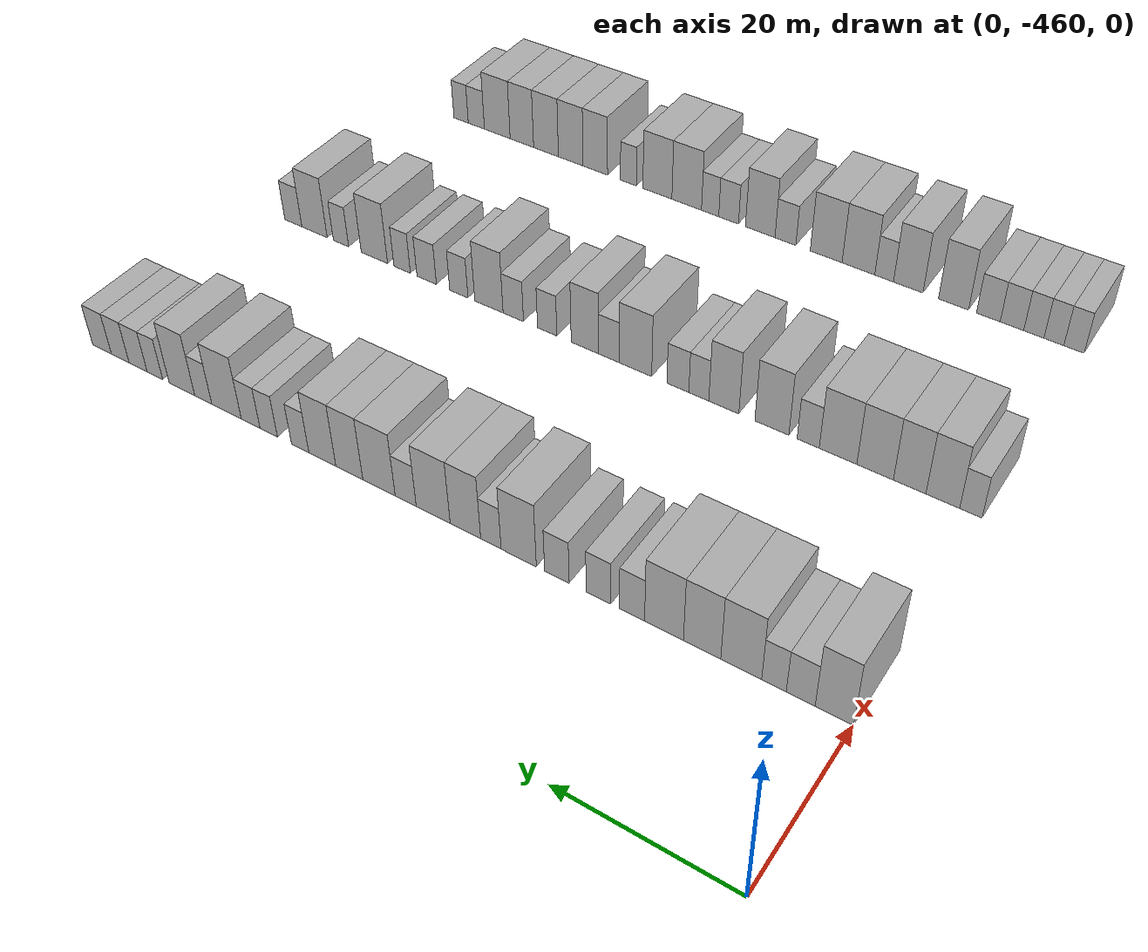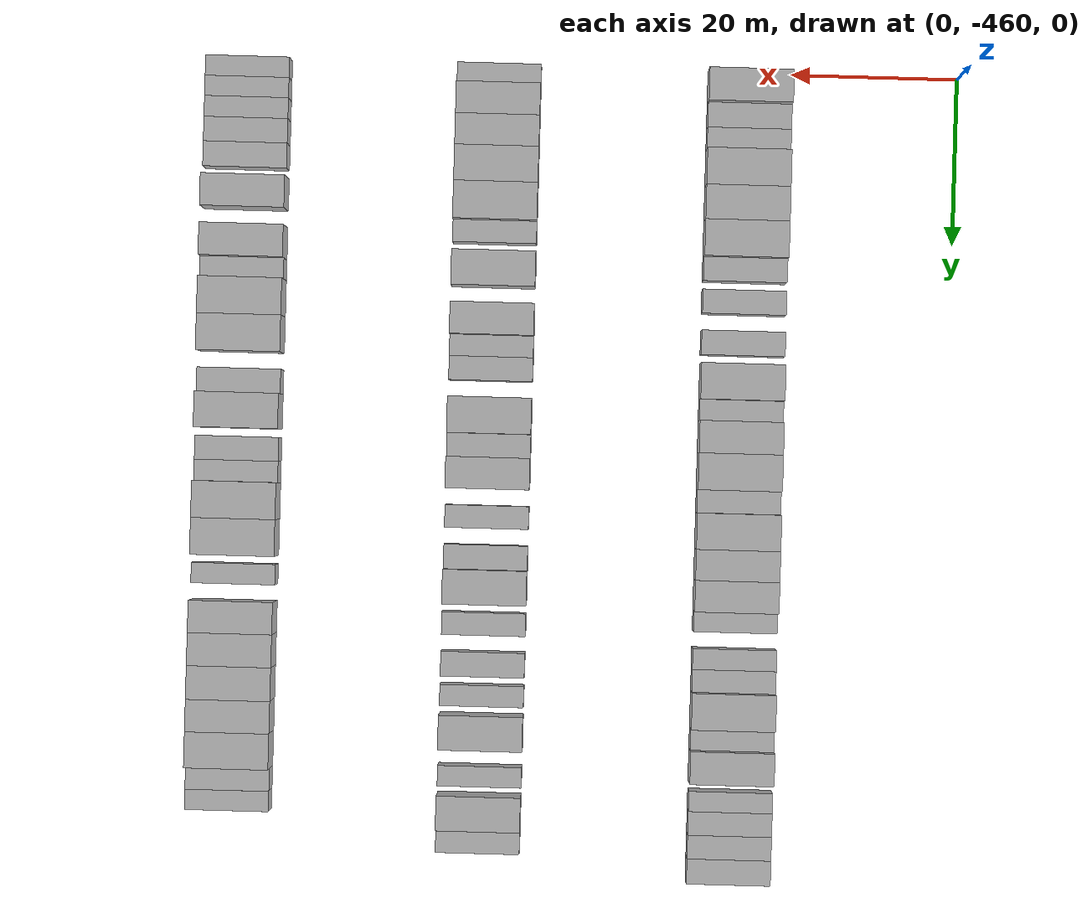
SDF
<sdf version="1.6">
 <world name="default">
  <model name="building_1">
   <static>1</static>
   <pose>25.0000 -458.0443 0 0.000000 0.000000 0.000000</pose>
   <link name="link">
    <pose>0 0 4.50 0 0 0</pose>
    <collision name="collision"><geometry><box><size>10.0000 3.9114 9.0000</size></box></geometry></collision>
    <visual name="visual">
     <cast_shadows>0</cast_shadows>
     <geometry><box><size>10.0000 3.9114 9.0000</size></box></geometry>
     <material>
      <script>
       <uri>model://HANNAS_wall/materials/scripts</uri>
       <uri>model://HANNAS_wall/materials/textures</uri>
       <name>vrc/HANNAS_wall</name>
      </script>
     </material>
    </visual>
   </link>
  </model>
  <model name="building_2">
   <static>1</static>
   <pose>25.0000 -454.5944 0 0.000000 0.000000 0.000000</pose>
   <link name="link">
    <pose>0 0 3.00 0 0 0</pose>
    <collision name="collision"><geometry><box><size>10.0000 2.9884 6.0000</size></box></geometry></collision>
    <visual name="visual">
     <cast_shadows>0</cast_shadows>
     <geometry><box><size>10.0000 2.9884 6.0000</size></box></geometry>
     <material>
      <script>
       <uri>model://HANNAS_wall/materials/scripts</uri>
       <uri>model://HANNAS_wall/materials/textures</uri>
       <name>vrc/HANNAS_wall</name>
      </script>
     </material>
    </visual>
   </link>
  </model>
  <model name="building_3">
   <static>1</static>
   <pose>25.0000 -451.8059 0 0.000000 0.000000 0.000000</pose>
   <link name="link">
    <pose>0 0 3.00 0 0 0</pose>
    <collision name="collision"><geometry><box><size>10.0000 2.5886 6.0000</size></box></geometry></collision>
    <visual name="visual">
     <cast_shadows>0</cast_shadows>
     <geometry><box><size>10.0000 2.5886 6.0000</size></box></geometry>
     <material>
      <script>
       <uri>model://HANNAS_wall/materials/scripts</uri>
       <uri>model://HANNAS_wall/materials/textures</uri>
       <name>vrc/HANNAS_wall</name>
      </script>
     </material>
    </visual>
   </link>
  </model>
  <model name="building_4">
   <static>1</static>
   <pose>25.0000 -448.3180 0 0.000000 0.000000 0.000000</pose>
   <link name="link">
    <pose>0 0 4.50 0 0 0</pose>
    <collision name="collision"><geometry><box><size>10.0000 4.3871 9.0000</size></box></geometry></collision>
    <visual name="visual">
     <cast_shadows>0</cast_shadows>
     <geometry><box><size>10.0000 4.3871 9.0000</size></box></geometry>
     <material>
      <script>
       <uri>model://HANNAS_wall/materials/scripts</uri>
       <uri>model://HANNAS_wall/materials/textures</uri>
       <name>vrc/HANNAS_wall</name>
      </script>
     </material>
    </visual>
   </link>
  </model>
  <model name="building_5">
   <static>1</static>
   <pose>25.0000 -444.0741 0 0.000000 0.000000 0.000000</pose>
   <link name="link">
    <pose>0 0 4.50 0 0 0</pose>
    <collision name="collision"><geometry><box><size>10.0000 4.1006 9.0000</size></box></geometry></collision>
    <visual name="visual">
     <cast_shadows>0</cast_shadows>
     <geometry><box><size>10.0000 4.1006 9.0000</size></box></geometry>
     <material>
      <script>
       <uri>model://HANNAS_wall/materials/scripts</uri>
       <uri>model://HANNAS_wall/materials/textures</uri>
       <name>vrc/HANNAS_wall</name>
      </script>
     </material>
    </visual>
   </link>
  </model>
  <model name="building_6">
   <static>1</static>
   <pose>25.0000 -439.8501 0 0.000000 0.000000 0.000000</pose>
   <link name="link">
    <pose>0 0 4.50 0 0 0</pose>
    <collision name="collision"><geometry><box><size>10.0000 4.3474 9.0000</size></box></geometry></collision>
    <visual name="visual">
     <cast_shadows>0</cast_shadows>
     <geometry><box><size>10.0000 4.3474 9.0000</size></box></geometry>
     <material>
      <script>
       <uri>model://HANNAS_wall/materials/scripts</uri>
       <uri>model://HANNAS_wall/materials/textures</uri>
       <name>vrc/HANNAS_wall</name>
      </script>
     </material>
    </visual>
   </link>
  </model>
  <model name="building_7">
   <static>1</static>
   <pose>25.0000 -436.2432 0 0.000000 0.000000 0.000000</pose>
   <link name="link">
    <pose>0 0 3.00 0 0 0</pose>
    <collision name="collision"><geometry><box><size>10.0000 2.8663 6.0000</size></box></geometry></collision>
    <visual name="visual">
     <cast_shadows>0</cast_shadows>
     <geometry><box><size>10.0000 2.8663 6.0000</size></box></geometry>
     <material>
      <script>
       <uri>model://HANNAS_wall/materials/scripts</uri>
       <uri>model://HANNAS_wall/materials/textures</uri>
       <name>vrc/HANNAS_wall</name>
      </script>
     </material>
    </visual>
   </link>
  </model>
  <model name="building_8">
   <static>1</static>
   <pose>25.0000 -432.3729 0 0.000000 0.000000 0.000000</pose>
   <link name="link">
    <pose>0 0 3.00 0 0 0</pose>
    <collision name="collision"><geometry><box><size>10.0000 2.8744 6.0000</size></box></geometry></collision>
    <visual name="visual">
     <cast_shadows>0</cast_shadows>
     <geometry><box><size>10.0000 2.8744 6.0000</size></box></geometry>
     <material>
      <script>
       <uri>model://HANNAS_wall/materials/scripts</uri>
       <uri>model://HANNAS_wall/materials/textures</uri>
       <name>vrc/HANNAS_wall</name>
      </script>
     </material>
    </visual>
   </link>
  </model>
  <model name="building_9">
   <static>1</static>
   <pose>25.0000 -427.4677 0 0.000000 0.000000 0.000000</pose>
   <link name="link">
    <pose>0 0 3.00 0 0 0</pose>
    <collision name="collision"><geometry><box><size>10.0000 2.9360 6.0000</size></box></geometry></collision>
    <visual name="visual">
     <cast_shadows>0</cast_shadows>
     <geometry><box><size>10.0000 2.9360 6.0000</size></box></geometry>
     <material>
      <script>
       <uri>model://HANNAS_wall/materials/scripts</uri>
       <uri>model://HANNAS_wall/materials/textures</uri>
       <name>vrc/HANNAS_wall</name>
      </script>
     </material>
    </visual>
   </link>
  </model>
  <model name="building_10">
   <static>1</static>
   <pose>25.0000 -422.8444 0 0.000000 0.000000 0.000000</pose>
   <link name="link">
    <pose>0 0 4.50 0 0 0</pose>
    <collision name="collision"><geometry><box><size>10.0000 4.3106 9.0000</size></box></geometry></collision>
    <visual name="visual">
     <cast_shadows>0</cast_shadows>
     <geometry><box><size>10.0000 4.3106 9.0000</size></box></geometry>
     <material>
      <script>
       <uri>model://HANNAS_wall/materials/scripts</uri>
       <uri>model://HANNAS_wall/materials/textures</uri>
       <name>vrc/HANNAS_wall</name>
      </script>
     </material>
    </visual>
   </link>
  </model>
  <model name="building_11">
   <static>1</static>
   <pose>25.0000 -419.4200 0 0.000000 0.000000 0.000000</pose>
   <link name="link">
    <pose>0 0 3.00 0 0 0</pose>
    <collision name="collision"><geometry><box><size>10.0000 2.5383 6.0000</size></box></geometry></collision>
    <visual name="visual">
     <cast_shadows>0</cast_shadows>
     <geometry><box><size>10.0000 2.5383 6.0000</size></box></geometry>
     <material>
      <script>
       <uri>model://HANNAS_wall/materials/scripts</uri>
       <uri>model://HANNAS_wall/materials/textures</uri>
       <name>vrc/HANNAS_wall</name>
      </script>
     </material>
    </visual>
   </link>
  </model>
  <model name="building_12">
   <static>1</static>
   <pose>25.0000 -416.2218 0 0.000000 0.000000 0.000000</pose>
   <link name="link">
    <pose>0 0 4.50 0 0 0</pose>
    <collision name="collision"><geometry><box><size>10.0000 3.8580 9.0000</size></box></geometry></collision>
    <visual name="visual">
     <cast_shadows>0</cast_shadows>
     <geometry><box><size>10.0000 3.8580 9.0000</size></box></geometry>
     <material>
      <script>
       <uri>model://HANNAS_wall/materials/scripts</uri>
       <uri>model://HANNAS_wall/materials/textures</uri>
       <name>vrc/HANNAS_wall</name>
      </script>
     </material>
    </visual>
   </link>
  </model>
  <model name="building_13">
   <static>1</static>
   <pose>25.0000 -412.1047 0 0.000000 0.000000 0.000000</pose>
   <link name="link">
    <pose>0 0 4.50 0 0 0</pose>
    <collision name="collision"><geometry><box><size>10.0000 4.3762 9.0000</size></box></geometry></collision>
    <visual name="visual">
     <cast_shadows>0</cast_shadows>
     <geometry><box><size>10.0000 4.3762 9.0000</size></box></geometry>
     <material>
      <script>
       <uri>model://HANNAS_wall/materials/scripts</uri>
       <uri>model://HANNAS_wall/materials/textures</uri>
       <name>vrc/HANNAS_wall</name>
      </script>
     </material>
    </visual>
   </link>
  </model>
  <model name="building_14">
   <static>1</static>
   <pose>25.0000 -408.5385 0 0.000000 0.000000 0.000000</pose>
   <link name="link">
    <pose>0 0 3.00 0 0 0</pose>
    <collision name="collision"><geometry><box><size>10.0000 2.7564 6.0000</size></box></geometry></collision>
    <visual name="visual">
     <cast_shadows>0</cast_shadows>
     <geometry><box><size>10.0000 2.7564 6.0000</size></box></geometry>
     <material>
      <script>
       <uri>model://HANNAS_wall/materials/scripts</uri>
       <uri>model://HANNAS_wall/materials/textures</uri>
       <name>vrc/HANNAS_wall</name>
      </script>
     </material>
    </visual>
   </link>
  </model>
  <model name="building_15">
   <static>1</static>
   <pose>25.0000 -405.0021 0 0.000000 0.000000 0.000000</pose>
   <link name="link">
    <pose>0 0 4.50 0 0 0</pose>
    <collision name="collision"><geometry><box><size>10.0000 4.3163 9.0000</size></box></geometry></collision>
    <visual name="visual">
     <cast_shadows>0</cast_shadows>
     <geometry><box><size>10.0000 4.3163 9.0000</size></box></geometry>
     <material>
      <script>
       <uri>model://HANNAS_wall/materials/scripts</uri>
       <uri>model://HANNAS_wall/materials/textures</uri>
       <name>vrc/HANNAS_wall</name>
      </script>
     </material>
    </visual>
   </link>
  </model>
  <model name="building_16">
   <static>1</static>
   <pose>25.0000 -401.0098 0 0.000000 0.000000 0.000000</pose>
   <link name="link">
    <pose>0 0 4.50 0 0 0</pose>
    <collision name="collision"><geometry><box><size>10.0000 3.6683 9.0000</size></box></geometry></collision>
    <visual name="visual">
     <cast_shadows>0</cast_shadows>
     <geometry><box><size>10.0000 3.6683 9.0000</size></box></geometry>
     <material>
      <script>
       <uri>model://HANNAS_wall/materials/scripts</uri>
       <uri>model://HANNAS_wall/materials/textures</uri>
       <name>vrc/HANNAS_wall</name>
      </script>
     </material>
    </visual>
   </link>
  </model>
  <model name="building_17">
   <static>1</static>
   <pose>25.0000 -397.3030 0 0.000000 0.000000 0.000000</pose>
   <link name="link">
    <pose>0 0 4.50 0 0 0</pose>
    <collision name="collision"><geometry><box><size>10.0000 3.7453 9.0000</size></box></geometry></collision>
    <visual name="visual">
     <cast_shadows>0</cast_shadows>
     <geometry><box><size>10.0000 3.7453 9.0000</size></box></geometry>
     <material>
      <script>
       <uri>model://HANNAS_wall/materials/scripts</uri>
       <uri>model://HANNAS_wall/materials/textures</uri>
       <name>vrc/HANNAS_wall</name>
      </script>
     </material>
    </visual>
   </link>
  </model>
  <model name="building_18">
   <static>1</static>
   <pose>25.0000 -394.2153 0 0.000000 0.000000 0.000000</pose>
   <link name="link">
    <pose>0 0 3.00 0 0 0</pose>
    <collision name="collision"><geometry><box><size>10.0000 2.4301 6.0000</size></box></geometry></collision>
    <visual name="visual">
     <cast_shadows>0</cast_shadows>
     <geometry><box><size>10.0000 2.4301 6.0000</size></box></geometry>
     <material>
      <script>
       <uri>model://HANNAS_wall/materials/scripts</uri>
       <uri>model://HANNAS_wall/materials/textures</uri>
       <name>vrc/HANNAS_wall</name>
      </script>
     </material>
    </visual>
   </link>
  </model>
  <model name="building_19">
   <static>1</static>
   <pose>25.0000 -389.7480 0 0.000000 0.000000 0.000000</pose>
   <link name="link">
    <pose>0 0 3.00 0 0 0</pose>
    <collision name="collision"><geometry><box><size>10.0000 2.5046 6.0000</size></box></geometry></collision>
    <visual name="visual">
     <cast_shadows>0</cast_shadows>
     <geometry><box><size>10.0000 2.5046 6.0000</size></box></geometry>
     <material>
      <script>
       <uri>model://HANNAS_wall/materials/scripts</uri>
       <uri>model://HANNAS_wall/materials/textures</uri>
       <name>vrc/HANNAS_wall</name>
      </script>
     </material>
    </visual>
   </link>
  </model>
  <model name="building_20">
   <static>1</static>
   <pose>25.0000 -387.1403 0 0.000000 0.000000 0.000000</pose>
   <link name="link">
    <pose>0 0 3.00 0 0 0</pose>
    <collision name="collision"><geometry><box><size>10.0000 2.7107 6.0000</size></box></geometry></collision>
    <visual name="visual">
     <cast_shadows>0</cast_shadows>
     <geometry><box><size>10.0000 2.7107 6.0000</size></box></geometry>
     <material>
      <script>
       <uri>model://HANNAS_wall/materials/scripts</uri>
       <uri>model://HANNAS_wall/materials/textures</uri>
       <name>vrc/HANNAS_wall</name>
      </script>
     </material>
    </visual>
   </link>
  </model>
  <model name="building_21">
   <static>1</static>
   <pose>25.0000 -383.6075 0 0.000000 0.000000 0.000000</pose>
   <link name="link">
    <pose>0 0 4.50 0 0 0</pose>
    <collision name="collision"><geometry><box><size>10.0000 4.3550 9.0000</size></box></geometry></collision>
    <visual name="visual">
     <cast_shadows>0</cast_shadows>
     <geometry><box><size>10.0000 4.3550 9.0000</size></box></geometry>
     <material>
      <script>
       <uri>model://HANNAS_wall/materials/scripts</uri>
       <uri>model://HANNAS_wall/materials/textures</uri>
       <name>vrc/HANNAS_wall</name>
      </script>
     </material>
    </visual>
   </link>
  </model>
  <model name="building_22">
   <static>1</static>
   <pose>25.0000 -380.1542 0 0.000000 0.000000 0.000000</pose>
   <link name="link">
    <pose>0 0 3.00 0 0 0</pose>
    <collision name="collision"><geometry><box><size>10.0000 2.5516 6.0000</size></box></geometry></collision>
    <visual name="visual">
     <cast_shadows>0</cast_shadows>
     <geometry><box><size>10.0000 2.5516 6.0000</size></box></geometry>
     <material>
      <script>
       <uri>model://HANNAS_wall/materials/scripts</uri>
       <uri>model://HANNAS_wall/materials/textures</uri>
       <name>vrc/HANNAS_wall</name>
      </script>
     </material>
    </visual>
   </link>
  </model>
  <model name="building_23">
   <static>1</static>
   <pose>25.0000 -376.9304 0 0.000000 0.000000 0.000000</pose>
   <link name="link">
    <pose>0 0 4.50 0 0 0</pose>
    <collision name="collision"><geometry><box><size>10.0000 3.8958 9.0000</size></box></geometry></collision>
    <visual name="visual">
     <cast_shadows>0</cast_shadows>
     <geometry><box><size>10.0000 3.8958 9.0000</size></box></geometry>
     <material>
      <script>
       <uri>model://HANNAS_wall/materials/scripts</uri>
       <uri>model://HANNAS_wall/materials/textures</uri>
       <name>vrc/HANNAS_wall</name>
      </script>
     </material>
    </visual>
   </link>
  </model>
  <model name="building_24">
   <static>1</static>
   <pose>25.0000 -372.7787 0 0.000000 0.000000 0.000000</pose>
   <link name="link">
    <pose>0 0 3.00 0 0 0</pose>
    <collision name="collision"><geometry><box><size>10.0000 2.4075 6.0000</size></box></geometry></collision>
    <visual name="visual">
     <cast_shadows>0</cast_shadows>
     <geometry><box><size>10.0000 2.4075 6.0000</size></box></geometry>
     <material>
      <script>
       <uri>model://HANNAS_wall/materials/scripts</uri>
       <uri>model://HANNAS_wall/materials/textures</uri>
       <name>vrc/HANNAS_wall</name>
      </script>
     </material>
    </visual>
   </link>
  </model>
  <model name="building_25">
   <static>1</static>
   <pose>25.0000 -370.1652 0 0.000000 0.000000 0.000000</pose>
   <link name="link">
    <pose>0 0 3.00 0 0 0</pose>
    <collision name="collision"><geometry><box><size>10.0000 2.8196 6.0000</size></box></geometry></collision>
    <visual name="visual">
     <cast_shadows>0</cast_shadows>
     <geometry><box><size>10.0000 2.8196 6.0000</size></box></geometry>
     <material>
      <script>
       <uri>model://HANNAS_wall/materials/scripts</uri>
       <uri>model://HANNAS_wall/materials/textures</uri>
       <name>vrc/HANNAS_wall</name>
      </script>
     </material>
    </visual>
   </link>
  </model>
  <model name="building_26">
   <static>1</static>
   <pose>25.0000 -367.3473 0 0.000000 0.000000 0.000000</pose>
   <link name="link">
    <pose>0 0 3.00 0 0 0</pose>
    <collision name="collision"><geometry><box><size>10.0000 2.8162 6.0000</size></box></geometry></collision>
    <visual name="visual">
     <cast_shadows>0</cast_shadows>
     <geometry><box><size>10.0000 2.8162 6.0000</size></box></geometry>
     <material>
      <script>
       <uri>model://HANNAS_wall/materials/scripts</uri>
       <uri>model://HANNAS_wall/materials/textures</uri>
       <name>vrc/HANNAS_wall</name>
      </script>
     </material>
    </visual>
   </link>
  </model>
  <model name="building_27">
   <static>1</static>
   <pose>25.0000 -364.4440 0 0.000000 0.000000 0.000000</pose>
   <link name="link">
    <pose>0 0 3.00 0 0 0</pose>
    <collision name="collision"><geometry><box><size>10.0000 2.9904 6.0000</size></box></geometry></collision>
    <visual name="visual">
     <cast_shadows>0</cast_shadows>
     <geometry><box><size>10.0000 2.9904 6.0000</size></box></geometry>
     <material>
      <script>
       <uri>model://HANNAS_wall/materials/scripts</uri>
       <uri>model://HANNAS_wall/materials/textures</uri>
       <name>vrc/HANNAS_wall</name>
      </script>
     </material>
    </visual>
   </link>
  </model>
  <model name="building_228">
   <static>1</static>
   <pose>55.0000 -458.7597 0 0.000000 0.000000 0.000000</pose>
   <link name="link">
    <pose>0 0 3.00 0 0 0</pose>
    <collision name="collision"><geometry><box><size>10.0000 2.4806 6.0000</size></box></geometry></collision>
    <visual name="visual">
     <cast_shadows>0</cast_shadows>
     <geometry><box><size>10.0000 2.4806 6.0000</size></box></geometry>
     <material>
      <script>
       <uri>model://HANNAS_wall/materials/scripts</uri>
       <uri>model://HANNAS_wall/materials/textures</uri>
       <name>vrc/HANNAS_wall</name>
      </script>
     </material>
    </visual>
   </link>
  </model>
  <model name="building_229">
   <static>1</static>
   <pose>55.0000 -455.6267 0 0.000000 0.000000 0.000000</pose>
   <link name="link">
    <pose>0 0 4.50 0 0 0</pose>
    <collision name="collision"><geometry><box><size>10.0000 3.7855 9.0000</size></box></geometry></collision>
    <visual name="visual">
     <cast_shadows>0</cast_shadows>
     <geometry><box><size>10.0000 3.7855 9.0000</size></box></geometry>
     <material>
      <script>
       <uri>model://HANNAS_wall/materials/scripts</uri>
       <uri>model://HANNAS_wall/materials/textures</uri>
       <name>vrc/HANNAS_wall</name>
      </script>
     </material>
    </visual>
   </link>
  </model>
  <model name="building_230">
   <static>1</static>
   <pose>55.0000 -451.8769 0 0.000000 0.000000 0.000000</pose>
   <link name="link">
    <pose>0 0 4.50 0 0 0</pose>
    <collision name="collision"><geometry><box><size>10.0000 3.7140 9.0000</size></box></geometry></collision>
    <visual name="visual">
     <cast_shadows>0</cast_shadows>
     <geometry><box><size>10.0000 3.7140 9.0000</size></box></geometry>
     <material>
      <script>
       <uri>model://HANNAS_wall/materials/scripts</uri>
       <uri>model://HANNAS_wall/materials/textures</uri>
       <name>vrc/HANNAS_wall</name>
      </script>
     </material>
    </visual>
   </link>
  </model>
  <model name="building_231">
   <static>1</static>
   <pose>55.0000 -447.8902 0 0.000000 0.000000 0.000000</pose>
   <link name="link">
    <pose>0 0 4.50 0 0 0</pose>
    <collision name="collision"><geometry><box><size>10.0000 4.2594 9.0000</size></box></geometry></collision>
    <visual name="visual">
     <cast_shadows>0</cast_shadows>
     <geometry><box><size>10.0000 4.2594 9.0000</size></box></geometry>
     <material>
      <script>
       <uri>model://HANNAS_wall/materials/scripts</uri>
       <uri>model://HANNAS_wall/materials/textures</uri>
       <name>vrc/HANNAS_wall</name>
      </script>
     </material>
    </visual>
   </link>
  </model>
  <model name="building_232">
   <static>1</static>
   <pose>55.0000 -443.5237 0 0.000000 0.000000 0.000000</pose>
   <link name="link">
    <pose>0 0 4.50 0 0 0</pose>
    <collision name="collision"><geometry><box><size>10.0000 4.4736 9.0000</size></box></geometry></collision>
    <visual name="visual">
     <cast_shadows>0</cast_shadows>
     <geometry><box><size>10.0000 4.4736 9.0000</size></box></geometry>
     <material>
      <script>
       <uri>model://HANNAS_wall/materials/scripts</uri>
       <uri>model://HANNAS_wall/materials/textures</uri>
       <name>vrc/HANNAS_wall</name>
      </script>
     </material>
    </visual>
   </link>
  </model>
  <model name="building_233">
   <static>1</static>
   <pose>55.0000 -439.9512 0 0.000000 0.000000 0.000000</pose>
   <link name="link">
    <pose>0 0 3.00 0 0 0</pose>
    <collision name="collision"><geometry><box><size>10.0000 2.6715 6.0000</size></box></geometry></collision>
    <visual name="visual">
     <cast_shadows>0</cast_shadows>
     <geometry><box><size>10.0000 2.6715 6.0000</size></box></geometry>
     <material>
      <script>
       <uri>model://HANNAS_wall/materials/scripts</uri>
       <uri>model://HANNAS_wall/materials/textures</uri>
       <name>vrc/HANNAS_wall</name>
      </script>
     </material>
    </visual>
   </link>
  </model>
  <model name="building_234">
   <static>1</static>
   <pose>55.0000 -435.5177 0 0.000000 0.000000 0.000000</pose>
   <link name="link">
    <pose>0 0 4.50 0 0 0</pose>
    <collision name="collision"><geometry><box><size>10.0000 4.1953 9.0000</size></box></geometry></collision>
    <visual name="visual">
     <cast_shadows>0</cast_shadows>
     <geometry><box><size>10.0000 4.1953 9.0000</size></box></geometry>
     <material>
      <script>
       <uri>model://HANNAS_wall/materials/scripts</uri>
       <uri>model://HANNAS_wall/materials/textures</uri>
       <name>vrc/HANNAS_wall</name>
      </script>
     </material>
    </visual>
   </link>
  </model>
  <model name="building_235">
   <static>1</static>
   <pose>55.0000 -429.5140 0 0.000000 0.000000 0.000000</pose>
   <link name="link">
    <pose>0 0 4.50 0 0 0</pose>
    <collision name="collision"><geometry><box><size>10.0000 3.8122 9.0000</size></box></geometry></collision>
    <visual name="visual">
     <cast_shadows>0</cast_shadows>
     <geometry><box><size>10.0000 3.8122 9.0000</size></box></geometry>
     <material>
      <script>
       <uri>model://HANNAS_wall/materials/scripts</uri>
       <uri>model://HANNAS_wall/materials/textures</uri>
       <name>vrc/HANNAS_wall</name>
      </script>
     </material>
    </visual>
   </link>
  </model>
  <model name="building_236">
   <static>1</static>
   <pose>55.0000 -426.3213 0 0.000000 0.000000 0.000000</pose>
   <link name="link">
    <pose>0 0 3.00 0 0 0</pose>
    <collision name="collision"><geometry><box><size>10.0000 2.5733 6.0000</size></box></geometry></collision>
    <visual name="visual">
     <cast_shadows>0</cast_shadows>
     <geometry><box><size>10.0000 2.5733 6.0000</size></box></geometry>
     <material>
      <script>
       <uri>model://HANNAS_wall/materials/scripts</uri>
       <uri>model://HANNAS_wall/materials/textures</uri>
       <name>vrc/HANNAS_wall</name>
      </script>
     </material>
    </visual>
   </link>
  </model>
  <model name="building_237">
   <static>1</static>
   <pose>55.0000 -423.6096 0 0.000000 0.000000 0.000000</pose>
   <link name="link">
    <pose>0 0 3.00 0 0 0</pose>
    <collision name="collision"><geometry><box><size>10.0000 2.8501 6.0000</size></box></geometry></collision>
    <visual name="visual">
     <cast_shadows>0</cast_shadows>
     <geometry><box><size>10.0000 2.8501 6.0000</size></box></geometry>
     <material>
      <script>
       <uri>model://HANNAS_wall/materials/scripts</uri>
       <uri>model://HANNAS_wall/materials/textures</uri>
       <name>vrc/HANNAS_wall</name>
      </script>
     </material>
    </visual>
   </link>
  </model>
  <model name="building_238">
   <static>1</static>
   <pose>55.0000 -418.0253 0 0.000000 0.000000 0.000000</pose>
   <link name="link">
    <pose>0 0 4.50 0 0 0</pose>
    <collision name="collision"><geometry><box><size>10.0000 4.3184 9.0000</size></box></geometry></collision>
    <visual name="visual">
     <cast_shadows>0</cast_shadows>
     <geometry><box><size>10.0000 4.3184 9.0000</size></box></geometry>
     <material>
      <script>
       <uri>model://HANNAS_wall/materials/scripts</uri>
       <uri>model://HANNAS_wall/materials/textures</uri>
       <name>vrc/HANNAS_wall</name>
      </script>
     </material>
    </visual>
   </link>
  </model>
  <model name="building_239">
   <static>1</static>
   <pose>55.0000 -414.4528 0 0.000000 0.000000 0.000000</pose>
   <link name="link">
    <pose>0 0 3.00 0 0 0</pose>
    <collision name="collision"><geometry><box><size>10.0000 2.8267 6.0000</size></box></geometry></collision>
    <visual name="visual">
     <cast_shadows>0</cast_shadows>
     <geometry><box><size>10.0000 2.8267 6.0000</size></box></geometry>
     <material>
      <script>
       <uri>model://HANNAS_wall/materials/scripts</uri>
       <uri>model://HANNAS_wall/materials/textures</uri>
       <name>vrc/HANNAS_wall</name>
      </script>
     </material>
    </visual>
   </link>
  </model>
  <model name="building_240">
   <static>1</static>
   <pose>55.0000 -411.1658 0 0.000000 0.000000 0.000000</pose>
   <link name="link">
    <pose>0 0 4.50 0 0 0</pose>
    <collision name="collision"><geometry><box><size>10.0000 3.7471 9.0000</size></box></geometry></collision>
    <visual name="visual">
     <cast_shadows>0</cast_shadows>
     <geometry><box><size>10.0000 3.7471 9.0000</size></box></geometry>
     <material>
      <script>
       <uri>model://HANNAS_wall/materials/scripts</uri>
       <uri>model://HANNAS_wall/materials/textures</uri>
       <name>vrc/HANNAS_wall</name>
      </script>
     </material>
    </visual>
   </link>
  </model>
  <model name="building_241">
   <static>1</static>
   <pose>55.0000 -405.9366 0 0.000000 0.000000 0.000000</pose>
   <link name="link">
    <pose>0 0 3.00 0 0 0</pose>
    <collision name="collision"><geometry><box><size>10.0000 2.7115 6.0000</size></box></geometry></collision>
    <visual name="visual">
     <cast_shadows>0</cast_shadows>
     <geometry><box><size>10.0000 2.7115 6.0000</size></box></geometry>
     <material>
      <script>
       <uri>model://HANNAS_wall/materials/scripts</uri>
       <uri>model://HANNAS_wall/materials/textures</uri>
       <name>vrc/HANNAS_wall</name>
      </script>
     </material>
    </visual>
   </link>
  </model>
  <model name="building_242">
   <static>1</static>
   <pose>55.0000 -401.1159 0 0.000000 0.000000 0.000000</pose>
   <link name="link">
    <pose>0 0 3.00 0 0 0</pose>
    <collision name="collision"><geometry><box><size>10.0000 2.9298 6.0000</size></box></geometry></collision>
    <visual name="visual">
     <cast_shadows>0</cast_shadows>
     <geometry><box><size>10.0000 2.9298 6.0000</size></box></geometry>
     <material>
      <script>
       <uri>model://HANNAS_wall/materials/scripts</uri>
       <uri>model://HANNAS_wall/materials/textures</uri>
       <name>vrc/HANNAS_wall</name>
      </script>
     </material>
    </visual>
   </link>
  </model>
  <model name="building_243">
   <static>1</static>
   <pose>55.0000 -397.5880 0 0.000000 0.000000 0.000000</pose>
   <link name="link">
    <pose>0 0 4.50 0 0 0</pose>
    <collision name="collision"><geometry><box><size>10.0000 4.1259 9.0000</size></box></geometry></collision>
    <visual name="visual">
     <cast_shadows>0</cast_shadows>
     <geometry><box><size>10.0000 4.1259 9.0000</size></box></geometry>
     <material>
      <script>
       <uri>model://HANNAS_wall/materials/scripts</uri>
       <uri>model://HANNAS_wall/materials/textures</uri>
       <name>vrc/HANNAS_wall</name>
      </script>
     </material>
    </visual>
   </link>
  </model>
  <model name="building_244">
   <static>1</static>
   <pose>55.0000 -393.1722 0 0.000000 0.000000 0.000000</pose>
   <link name="link">
    <pose>0 0 3.00 0 0 0</pose>
    <collision name="collision"><geometry><box><size>10.0000 2.7058 6.0000</size></box></geometry></collision>
    <visual name="visual">
     <cast_shadows>0</cast_shadows>
     <geometry><box><size>10.0000 2.7058 6.0000</size></box></geometry>
     <material>
      <script>
       <uri>model://HANNAS_wall/materials/scripts</uri>
       <uri>model://HANNAS_wall/materials/textures</uri>
       <name>vrc/HANNAS_wall</name>
      </script>
     </material>
    </visual>
   </link>
  </model>
  <model name="building_245">
   <static>1</static>
   <pose>55.0000 -388.3444 0 0.000000 0.000000 0.000000</pose>
   <link name="link">
    <pose>0 0 3.00 0 0 0</pose>
    <collision name="collision"><geometry><box><size>10.0000 2.9499 6.0000</size></box></geometry></collision>
    <visual name="visual">
     <cast_shadows>0</cast_shadows>
     <geometry><box><size>10.0000 2.9499 6.0000</size></box></geometry>
     <material>
      <script>
       <uri>model://HANNAS_wall/materials/scripts</uri>
       <uri>model://HANNAS_wall/materials/textures</uri>
       <name>vrc/HANNAS_wall</name>
      </script>
     </material>
    </visual>
   </link>
  </model>
  <model name="building_246">
   <static>1</static>
   <pose>55.0000 -384.6070 0 0.000000 0.000000 0.000000</pose>
   <link name="link">
    <pose>0 0 3.00 0 0 0</pose>
    <collision name="collision"><geometry><box><size>10.0000 2.5249 6.0000</size></box></geometry></collision>
    <visual name="visual">
     <cast_shadows>0</cast_shadows>
     <geometry><box><size>10.0000 2.5249 6.0000</size></box></geometry>
     <material>
      <script>
       <uri>model://HANNAS_wall/materials/scripts</uri>
       <uri>model://HANNAS_wall/materials/textures</uri>
       <name>vrc/HANNAS_wall</name>
      </script>
     </material>
    </visual>
   </link>
  </model>
  <model name="building_247">
   <static>1</static>
   <pose>55.0000 -380.2821 0 0.000000 0.000000 0.000000</pose>
   <link name="link">
    <pose>0 0 4.50 0 0 0</pose>
    <collision name="collision"><geometry><box><size>10.0000 4.1250 9.0000</size></box></geometry></collision>
    <visual name="visual">
     <cast_shadows>0</cast_shadows>
     <geometry><box><size>10.0000 4.1250 9.0000</size></box></geometry>
     <material>
      <script>
       <uri>model://HANNAS_wall/materials/scripts</uri>
       <uri>model://HANNAS_wall/materials/textures</uri>
       <name>vrc/HANNAS_wall</name>
      </script>
     </material>
    </visual>
   </link>
  </model>
  <model name="building_248">
   <static>1</static>
   <pose>55.0000 -375.0009 0 0.000000 0.000000 0.000000</pose>
   <link name="link">
    <pose>0 0 3.00 0 0 0</pose>
    <collision name="collision"><geometry><box><size>10.0000 2.4374 6.0000</size></box></geometry></collision>
    <visual name="visual">
     <cast_shadows>0</cast_shadows>
     <geometry><box><size>10.0000 2.4374 6.0000</size></box></geometry>
     <material>
      <script>
       <uri>model://HANNAS_wall/materials/scripts</uri>
       <uri>model://HANNAS_wall/materials/textures</uri>
       <name>vrc/HANNAS_wall</name>
      </script>
     </material>
    </visual>
   </link>
  </model>
  <model name="building_249">
   <static>1</static>
   <pose>55.0000 -370.7204 0 0.000000 0.000000 0.000000</pose>
   <link name="link">
    <pose>0 0 4.50 0 0 0</pose>
    <collision name="collision"><geometry><box><size>10.0000 4.1235 9.0000</size></box></geometry></collision>
    <visual name="visual">
     <cast_shadows>0</cast_shadows>
     <geometry><box><size>10.0000 4.1235 9.0000</size></box></geometry>
     <material>
      <script>
       <uri>model://HANNAS_wall/materials/scripts</uri>
       <uri>model://HANNAS_wall/materials/textures</uri>
       <name>vrc/HANNAS_wall</name>
      </script>
     </material>
    </visual>
   </link>
  </model>
  <model name="building_250">
   <static>1</static>
   <pose>55.0000 -367.2578 0 0.000000 0.000000 0.000000</pose>
   <link name="link">
    <pose>0 0 3.00 0 0 0</pose>
    <collision name="collision"><geometry><box><size>10.0000 2.8016 6.0000</size></box></geometry></collision>
    <visual name="visual">
     <cast_shadows>0</cast_shadows>
     <geometry><box><size>10.0000 2.8016 6.0000</size></box></geometry>
     <material>
      <script>
       <uri>model://HANNAS_wall/materials/scripts</uri>
       <uri>model://HANNAS_wall/materials/textures</uri>
       <name>vrc/HANNAS_wall</name>
      </script>
     </material>
    </visual>
   </link>
  </model>
  <model name="building_447">
   <static>1</static>
   <pose>85.0000 -458.7826 0 0.000000 0.000000 0.000000</pose>
   <link name="link">
    <pose>0 0 3.00 0 0 0</pose>
    <collision name="collision"><geometry><box><size>10.0000 2.4348 6.0000</size></box></geometry></collision>
    <visual name="visual">
     <cast_shadows>0</cast_shadows>
     <geometry><box><size>10.0000 2.4348 6.0000</size></box></geometry>
     <material>
      <script>
       <uri>model://HANNAS_wall/materials/scripts</uri>
       <uri>model://HANNAS_wall/materials/textures</uri>
       <name>vrc/HANNAS_wall</name>
      </script>
     </material>
    </visual>
   </link>
  </model>
  <model name="building_448">
   <static>1</static>
   <pose>85.0000 -456.3628 0 0.000000 0.000000 0.000000</pose>
   <link name="link">
    <pose>0 0 3.00 0 0 0</pose>
    <collision name="collision"><geometry><box><size>10.0000 2.4049 6.0000</size></box></geometry></collision>
    <visual name="visual">
     <cast_shadows>0</cast_shadows>
     <geometry><box><size>10.0000 2.4049 6.0000</size></box></geometry>
     <material>
      <script>
       <uri>model://HANNAS_wall/materials/scripts</uri>
       <uri>model://HANNAS_wall/materials/textures</uri>
       <name>vrc/HANNAS_wall</name>
      </script>
     </material>
    </visual>
   </link>
  </model>
  <model name="building_449">
   <static>1</static>
   <pose>85.0000 -453.9184 0 0.000000 0.000000 0.000000</pose>
   <link name="link">
    <pose>0 0 3.00 0 0 0</pose>
    <collision name="collision"><geometry><box><size>10.0000 2.4840 6.0000</size></box></geometry></collision>
    <visual name="visual">
     <cast_shadows>0</cast_shadows>
     <geometry><box><size>10.0000 2.4840 6.0000</size></box></geometry>
     <material>
      <script>
       <uri>model://HANNAS_wall/materials/scripts</uri>
       <uri>model://HANNAS_wall/materials/textures</uri>
       <name>vrc/HANNAS_wall</name>
      </script>
     </material>
    </visual>
   </link>
  </model>
  <model name="building_450">
   <static>1</static>
   <pose>85.0000 -451.2186 0 0.000000 0.000000 0.000000</pose>
   <link name="link">
    <pose>0 0 3.00 0 0 0</pose>
    <collision name="collision"><geometry><box><size>10.0000 2.9155 6.0000</size></box></geometry></collision>
    <visual name="visual">
     <cast_shadows>0</cast_shadows>
     <geometry><box><size>10.0000 2.9155 6.0000</size></box></geometry>
     <material>
      <script>
       <uri>model://HANNAS_wall/materials/scripts</uri>
       <uri>model://HANNAS_wall/materials/textures</uri>
       <name>vrc/HANNAS_wall</name>
      </script>
     </material>
    </visual>
   </link>
  </model>
  <model name="building_451">
   <static>1</static>
   <pose>85.0000 -448.2720 0 0.000000 0.000000 0.000000</pose>
   <link name="link">
    <pose>0 0 3.00 0 0 0</pose>
    <collision name="collision"><geometry><box><size>10.0000 2.9776 6.0000</size></box></geometry></collision>
    <visual name="visual">
     <cast_shadows>0</cast_shadows>
     <geometry><box><size>10.0000 2.9776 6.0000</size></box></geometry>
     <material>
      <script>
       <uri>model://HANNAS_wall/materials/scripts</uri>
       <uri>model://HANNAS_wall/materials/textures</uri>
       <name>vrc/HANNAS_wall</name>
      </script>
     </material>
    </visual>
   </link>
  </model>
  <model name="building_452">
   <static>1</static>
   <pose>85.0000 -443.8622 0 0.000000 0.000000 0.000000</pose>
   <link name="link">
    <pose>0 0 4.50 0 0 0</pose>
    <collision name="collision"><geometry><box><size>10.0000 3.8420 9.0000</size></box></geometry></collision>
    <visual name="visual">
     <cast_shadows>0</cast_shadows>
     <geometry><box><size>10.0000 3.8420 9.0000</size></box></geometry>
     <material>
      <script>
       <uri>model://HANNAS_wall/materials/scripts</uri>
       <uri>model://HANNAS_wall/materials/textures</uri>
       <name>vrc/HANNAS_wall</name>
      </script>
     </material>
    </visual>
   </link>
  </model>
  <model name="building_453">
   <static>1</static>
   <pose>85.0000 -438.0112 0 0.000000 0.000000 0.000000</pose>
   <link name="link">
    <pose>0 0 4.50 0 0 0</pose>
    <collision name="collision"><geometry><box><size>10.0000 3.8600 9.0000</size></box></geometry></collision>
    <visual name="visual">
     <cast_shadows>0</cast_shadows>
     <geometry><box><size>10.0000 3.8600 9.0000</size></box></geometry>
     <material>
      <script>
       <uri>model://HANNAS_wall/materials/scripts</uri>
       <uri>model://HANNAS_wall/materials/textures</uri>
       <name>vrc/HANNAS_wall</name>
      </script>
     </material>
    </visual>
   </link>
  </model>
  <model name="building_454">
   <static>1</static>
   <pose>85.0000 -434.8390 0 0.000000 0.000000 0.000000</pose>
   <link name="link">
    <pose>0 0 3.00 0 0 0</pose>
    <collision name="collision"><geometry><box><size>10.0000 2.4842 6.0000</size></box></geometry></collision>
    <visual name="visual">
     <cast_shadows>0</cast_shadows>
     <geometry><box><size>10.0000 2.4842 6.0000</size></box></geometry>
     <material>
      <script>
       <uri>model://HANNAS_wall/materials/scripts</uri>
       <uri>model://HANNAS_wall/materials/textures</uri>
       <name>vrc/HANNAS_wall</name>
      </script>
     </material>
    </visual>
   </link>
  </model>
  <model name="building_455">
   <static>1</static>
   <pose>85.0000 -431.3947 0 0.000000 0.000000 0.000000</pose>
   <link name="link">
    <pose>0 0 4.50 0 0 0</pose>
    <collision name="collision"><geometry><box><size>10.0000 4.4045 9.0000</size></box></geometry></collision>
    <visual name="visual">
     <cast_shadows>0</cast_shadows>
     <geometry><box><size>10.0000 4.4045 9.0000</size></box></geometry>
     <material>
      <script>
       <uri>model://HANNAS_wall/materials/scripts</uri>
       <uri>model://HANNAS_wall/materials/textures</uri>
       <name>vrc/HANNAS_wall</name>
      </script>
     </material>
    </visual>
   </link>
  </model>
  <model name="building_456">
   <static>1</static>
   <pose>85.0000 -427.0118 0 0.000000 0.000000 0.000000</pose>
   <link name="link">
    <pose>0 0 4.50 0 0 0</pose>
    <collision name="collision"><geometry><box><size>10.0000 4.3612 9.0000</size></box></geometry></collision>
    <visual name="visual">
     <cast_shadows>0</cast_shadows>
     <geometry><box><size>10.0000 4.3612 9.0000</size></box></geometry>
     <material>
      <script>
       <uri>model://HANNAS_wall/materials/scripts</uri>
       <uri>model://HANNAS_wall/materials/textures</uri>
       <name>vrc/HANNAS_wall</name>
      </script>
     </material>
    </visual>
   </link>
  </model>
  <model name="building_457">
   <static>1</static>
   <pose>85.0000 -421.3710 0 0.000000 0.000000 0.000000</pose>
   <link name="link">
    <pose>0 0 3.00 0 0 0</pose>
    <collision name="collision"><geometry><box><size>10.0000 2.9204 6.0000</size></box></geometry></collision>
    <visual name="visual">
     <cast_shadows>0</cast_shadows>
     <geometry><box><size>10.0000 2.9204 6.0000</size></box></geometry>
     <material>
      <script>
       <uri>model://HANNAS_wall/materials/scripts</uri>
       <uri>model://HANNAS_wall/materials/textures</uri>
       <name>vrc/HANNAS_wall</name>
      </script>
     </material>
    </visual>
   </link>
  </model>
  <model name="building_458">
   <static>1</static>
   <pose>85.0000 -417.8060 0 0.000000 0.000000 0.000000</pose>
   <link name="link">
    <pose>0 0 4.50 0 0 0</pose>
    <collision name="collision"><geometry><box><size>10.0000 4.2097 9.0000</size></box></geometry></collision>
    <visual name="visual">
     <cast_shadows>0</cast_shadows>
     <geometry><box><size>10.0000 4.2097 9.0000</size></box></geometry>
     <material>
      <script>
       <uri>model://HANNAS_wall/materials/scripts</uri>
       <uri>model://HANNAS_wall/materials/textures</uri>
       <name>vrc/HANNAS_wall</name>
      </script>
     </material>
    </visual>
   </link>
  </model>
  <model name="building_459">
   <static>1</static>
   <pose>85.0000 -413.2738 0 0.000000 0.000000 0.000000</pose>
   <link name="link">
    <pose>0 0 3.00 0 0 0</pose>
    <collision name="collision"><geometry><box><size>10.0000 2.8548 6.0000</size></box></geometry></collision>
    <visual name="visual">
     <cast_shadows>0</cast_shadows>
     <geometry><box><size>10.0000 2.8548 6.0000</size></box></geometry>
     <material>
      <script>
       <uri>model://HANNAS_wall/materials/scripts</uri>
       <uri>model://HANNAS_wall/materials/textures</uri>
       <name>vrc/HANNAS_wall</name>
      </script>
     </material>
    </visual>
   </link>
  </model>
  <model name="building_460">
   <static>1</static>
   <pose>85.0000 -410.5840 0 0.000000 0.000000 0.000000</pose>
   <link name="link">
    <pose>0 0 3.00 0 0 0</pose>
    <collision name="collision"><geometry><box><size>10.0000 2.5248 6.0000</size></box></geometry></collision>
    <visual name="visual">
     <cast_shadows>0</cast_shadows>
     <geometry><box><size>10.0000 2.5248 6.0000</size></box></geometry>
     <material>
      <script>
       <uri>model://HANNAS_wall/materials/scripts</uri>
       <uri>model://HANNAS_wall/materials/textures</uri>
       <name>vrc/HANNAS_wall</name>
      </script>
     </material>
    </visual>
   </link>
  </model>
  <model name="building_461">
   <static>1</static>
   <pose>85.0000 -407.1265 0 0.000000 0.000000 0.000000</pose>
   <link name="link">
    <pose>0 0 4.50 0 0 0</pose>
    <collision name="collision"><geometry><box><size>10.0000 4.3901 9.0000</size></box></geometry></collision>
    <visual name="visual">
     <cast_shadows>0</cast_shadows>
     <geometry><box><size>10.0000 4.3901 9.0000</size></box></geometry>
     <material>
      <script>
       <uri>model://HANNAS_wall/materials/scripts</uri>
       <uri>model://HANNAS_wall/materials/textures</uri>
       <name>vrc/HANNAS_wall</name>
      </script>
     </material>
    </visual>
   </link>
  </model>
  <model name="building_462">
   <static>1</static>
   <pose>85.0000 -402.7445 0 0.000000 0.000000 0.000000</pose>
   <link name="link">
    <pose>0 0 4.50 0 0 0</pose>
    <collision name="collision"><geometry><box><size>10.0000 4.3740 9.0000</size></box></geometry></collision>
    <visual name="visual">
     <cast_shadows>0</cast_shadows>
     <geometry><box><size>10.0000 4.3740 9.0000</size></box></geometry>
     <material>
      <script>
       <uri>model://HANNAS_wall/materials/scripts</uri>
       <uri>model://HANNAS_wall/materials/textures</uri>
       <name>vrc/HANNAS_wall</name>
      </script>
     </material>
    </visual>
   </link>
  </model>
  <model name="building_463">
   <static>1</static>
   <pose>85.0000 -398.3417 0 0.000000 0.000000 0.000000</pose>
   <link name="link">
    <pose>0 0 3.00 0 0 0</pose>
    <collision name="collision"><geometry><box><size>10.0000 2.4317 6.0000</size></box></geometry></collision>
    <visual name="visual">
     <cast_shadows>0</cast_shadows>
     <geometry><box><size>10.0000 2.4317 6.0000</size></box></geometry>
     <material>
      <script>
       <uri>model://HANNAS_wall/materials/scripts</uri>
       <uri>model://HANNAS_wall/materials/textures</uri>
       <name>vrc/HANNAS_wall</name>
      </script>
     </material>
    </visual>
   </link>
  </model>
  <model name="building_464">
   <static>1</static>
   <pose>85.0000 -393.2060 0 0.000000 0.000000 0.000000</pose>
   <link name="link">
    <pose>0 0 4.50 0 0 0</pose>
    <collision name="collision"><geometry><box><size>10.0000 3.8398 9.0000</size></box></geometry></collision>
    <visual name="visual">
     <cast_shadows>0</cast_shadows>
     <geometry><box><size>10.0000 3.8398 9.0000</size></box></geometry>
     <material>
      <script>
       <uri>model://HANNAS_wall/materials/scripts</uri>
       <uri>model://HANNAS_wall/materials/textures</uri>
       <name>vrc/HANNAS_wall</name>
      </script>
     </material>
    </visual>
   </link>
  </model>
  <model name="building_465">
   <static>1</static>
   <pose>85.0000 -389.3320 0 0.000000 0.000000 0.000000</pose>
   <link name="link">
    <pose>0 0 4.50 0 0 0</pose>
    <collision name="collision"><geometry><box><size>10.0000 3.9081 9.0000</size></box></geometry></collision>
    <visual name="visual">
     <cast_shadows>0</cast_shadows>
     <geometry><box><size>10.0000 3.9081 9.0000</size></box></geometry>
     <material>
      <script>
       <uri>model://HANNAS_wall/materials/scripts</uri>
       <uri>model://HANNAS_wall/materials/textures</uri>
       <name>vrc/HANNAS_wall</name>
      </script>
     </material>
    </visual>
   </link>
  </model>
  <model name="building_466">
   <static>1</static>
   <pose>85.0000 -385.3814 0 0.000000 0.000000 0.000000</pose>
   <link name="link">
    <pose>0 0 4.50 0 0 0</pose>
    <collision name="collision"><geometry><box><size>10.0000 3.9933 9.0000</size></box></geometry></collision>
    <visual name="visual">
     <cast_shadows>0</cast_shadows>
     <geometry><box><size>10.0000 3.9933 9.0000</size></box></geometry>
     <material>
      <script>
       <uri>model://HANNAS_wall/materials/scripts</uri>
       <uri>model://HANNAS_wall/materials/textures</uri>
       <name>vrc/HANNAS_wall</name>
      </script>
     </material>
    </visual>
   </link>
  </model>
  <model name="building_467">
   <static>1</static>
   <pose>85.0000 -381.4625 0 0.000000 0.000000 0.000000</pose>
   <link name="link">
    <pose>0 0 4.50 0 0 0</pose>
    <collision name="collision"><geometry><box><size>10.0000 3.8444 9.0000</size></box></geometry></collision>
    <visual name="visual">
     <cast_shadows>0</cast_shadows>
     <geometry><box><size>10.0000 3.8444 9.0000</size></box></geometry>
     <material>
      <script>
       <uri>model://HANNAS_wall/materials/scripts</uri>
       <uri>model://HANNAS_wall/materials/textures</uri>
       <name>vrc/HANNAS_wall</name>
      </script>
     </material>
    </visual>
   </link>
  </model>
  <model name="building_468">
   <static>1</static>
   <pose>85.0000 -377.4025 0 0.000000 0.000000 0.000000</pose>
   <link name="link">
    <pose>0 0 4.50 0 0 0</pose>
    <collision name="collision"><geometry><box><size>10.0000 4.2757 9.0000</size></box></geometry></collision>
    <visual name="visual">
     <cast_shadows>0</cast_shadows>
     <geometry><box><size>10.0000 4.2757 9.0000</size></box></geometry>
     <material>
      <script>
       <uri>model://HANNAS_wall/materials/scripts</uri>
       <uri>model://HANNAS_wall/materials/textures</uri>
       <name>vrc/HANNAS_wall</name>
      </script>
     </material>
    </visual>
   </link>
  </model>
  <model name="building_469">
   <static>1</static>
   <pose>85.0000 -373.9048 0 0.000000 0.000000 0.000000</pose>
   <link name="link">
    <pose>0 0 3.00 0 0 0</pose>
    <collision name="collision"><geometry><box><size>10.0000 2.7196 6.0000</size></box></geometry></collision>
    <visual name="visual">
     <cast_shadows>0</cast_shadows>
     <geometry><box><size>10.0000 2.7196 6.0000</size></box></geometry>
     <material>
      <script>
       <uri>model://HANNAS_wall/materials/scripts</uri>
       <uri>model://HANNAS_wall/materials/textures</uri>
       <name>vrc/HANNAS_wall</name>
      </script>
     </material>
    </visual>
   </link>
  </model>
  <model name="building_470">
   <static>1</static>
   <pose>85.0000 -371.3331 0 0.000000 0.000000 0.000000</pose>
   <link name="link">
    <pose>0 0 3.00 0 0 0</pose>
    <collision name="collision"><geometry><box><size>10.0000 2.4237 6.0000</size></box></geometry></collision>
    <visual name="visual">
     <cast_shadows>0</cast_shadows>
     <geometry><box><size>10.0000 2.4237 6.0000</size></box></geometry>
     <material>
      <script>
       <uri>model://HANNAS_wall/materials/scripts</uri>
       <uri>model://HANNAS_wall/materials/textures</uri>
       <name>vrc/HANNAS_wall</name>
      </script>
     </material>
    </visual>
   </link>
  </model>
 </world>
</sdf>
